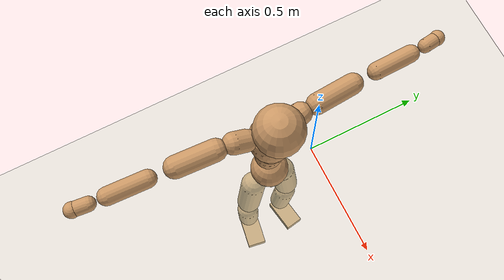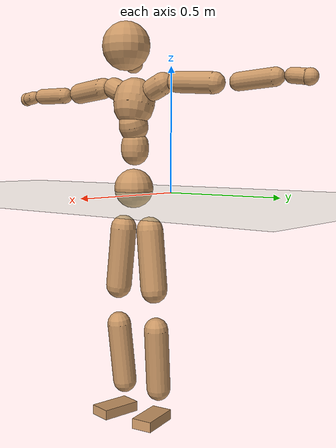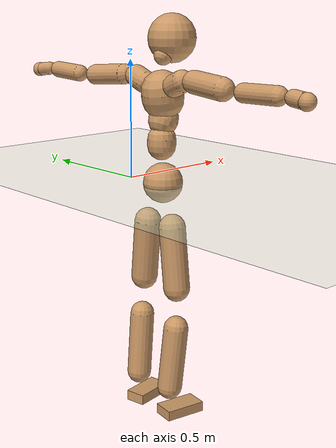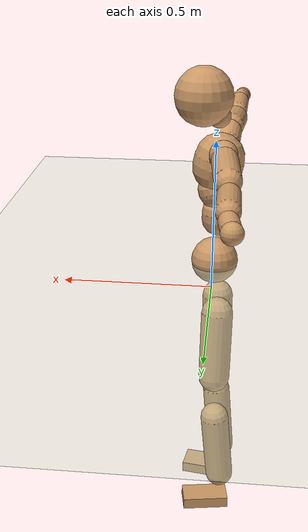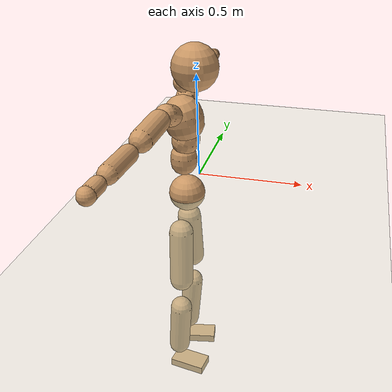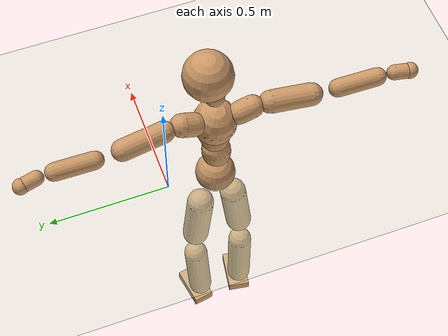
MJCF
<mujoco model="humanoid">
  <compiler coordinate="local" angle="radian"/>
  <default>
    <joint damping="0.0" armature="0.01" stiffness="0.0" limited="true"/>
    <geom conaffinity="1" condim="3" contype="7" margin="0.001" rgba="0.8 0.6 .4 1"/>
  </default>
  <asset>
    <texture type="skybox" builtin="gradient" rgb1=".4 .5 .6" rgb2="0 0 0" width="100" height="100"/>
    <texture builtin="flat" height="1278" mark="cross" markrgb="1 1 1" name="texgeom" random="0.01" rgb1="0.8 0.6 0.4" rgb2="0.8 0.6 0.4" type="cube" width="127"/>
    <texture builtin="checker" height="100" name="texplane" rgb1="0 0 0" rgb2="0.8 0.8 0.8" type="2d" width="100"/>
    <material name="MatPlane" reflectance="0.5" shininess="1" specular="1" texrepeat="60 60" texture="texplane"/>
    <material name="geom" texture="texgeom" texuniform="true"/>
  </asset>
  <worldbody>
    <light cutoff="100" diffuse="1 1 1" dir="-0 0 -1.3" directional="true" exponent="1" pos="0 0 1.3" specular=".1 .1 .1"/>
    <geom conaffinity="1" condim="3" name="floor" pos="0 0 0" rgba="0.8 0.9 0.8 1" size="100 100 .2" type="plane" material="MatPlane"/>
    <body name="Pelvis" pos="-0.0004 -0.2023 0.0105">
      <freejoint name="Pelvis"/>
      <geom type="sphere" contype="1" conaffinity="1" density="500" size="0.0826" pos="0.0000 0.0000 0.0000" name="Pelvis"/>
      <body name="L_Hip" pos="-0.0192 0.0652 -0.0897">
        <joint name="L_Hip_x" type="hinge" pos="0 0 0" axis="1 0 0" stiffness="800" damping="80" armature="0.02" range="-180.0000 180.0000"/>
        <joint name="L_Hip_y" type="hinge" pos="0 0 0" axis="0 1 0" stiffness="800" damping="80" armature="0.02" range="-180.0000 180.0000"/>
        <joint name="L_Hip_z" type="hinge" pos="0 0 0" axis="0 0 1" stiffness="800" damping="80" armature="0.02" range="-180.0000 180.0000"/>
        <geom type="capsule" contype="1" conaffinity="1" density="500" fromto="0.0009 0.0086 -0.0841 0.0036 0.0346 -0.3365" size="0.0563" name="L_Hip"/>
        <body name="L_Knee" pos="0.0045 0.0432 -0.4207">
          <joint name="L_Knee_x" type="hinge" pos="0 0 0" axis="1 0 0" stiffness="800" damping="80" armature="0.02" range="-180.0000 180.0000"/>
          <joint name="L_Knee_y" type="hinge" pos="0 0 0" axis="0 1 0" stiffness="800" damping="80" armature="0.02" range="-180.0000 180.0000"/>
          <joint name="L_Knee_z" type="hinge" pos="0 0 0" axis="0 0 1" stiffness="800" damping="80" armature="0.02" range="-180.0000 180.0000"/>
          <geom type="capsule" contype="1" conaffinity="1" density="500" fromto="-0.0086 -0.0027 -0.0885 -0.0345 -0.0109 -0.3542" size="0.0515" name="L_Knee"/>
          <body name="L_Ankle" pos="-0.0431 -0.0136 -0.4427">
            <joint name="L_Ankle_x" type="hinge" pos="0 0 0" axis="1 0 0" stiffness="800" damping="80" armature="0.02" range="-180.0000 180.0000"/>
            <joint name="L_Ankle_y" type="hinge" pos="0 0 0" axis="0 1 0" stiffness="800" damping="80" armature="0.02" range="-180.0000 180.0000"/>
            <joint name="L_Ankle_z" type="hinge" pos="0 0 0" axis="0 0 1" stiffness="800" damping="80" armature="0.02" range="-180.0000 180.0000"/>
            <geom type="box" contype="1" conaffinity="1" density="500" pos="0.0617 0.0104 -0.0306" size="0.0857 0.0441 0.0218" quat="0.9965 0.0000 0.0000 0.0836" name="L_Ankle"/>
            <body name="L_Toe" pos="0.1235 0.0209 -0.0612">
              <joint name="L_Toe_x" type="hinge" pos="0 0 0" axis="1 0 0" stiffness="500" damping="50" armature="0.02" range="-180.0000 180.0000"/>
              <joint name="L_Toe_y" type="hinge" pos="0 0 0" axis="0 1 0" stiffness="500" damping="50" armature="0.02" range="-180.0000 180.0000"/>
              <joint name="L_Toe_z" type="hinge" pos="0 0 0" axis="0 0 1" stiffness="500" damping="50" armature="0.02" range="-180.0000 180.0000"/>
              <geom type="box" contype="1" conaffinity="1" density="500" pos="0.0000 0.0000 0.0311" size="0.0009 0.0022 0.0011" quat="0.9959 0.0000 0.0000 0.0900" name="L_Toe"/>
            </body>
          </body>
        </body>
      </body>
      <body name="R_Hip" pos="-0.0143 -0.0625 -0.0874">
        <joint name="R_Hip_x" type="hinge" pos="0 0 0" axis="1 0 0" stiffness="800" damping="80" armature="0.02" range="-180.0000 180.0000"/>
        <joint name="R_Hip_y" type="hinge" pos="0 0 0" axis="0 1 0" stiffness="800" damping="80" armature="0.02" range="-180.0000 180.0000"/>
        <joint name="R_Hip_z" type="hinge" pos="0 0 0" axis="0 0 1" stiffness="800" damping="80" armature="0.02" range="-180.0000 180.0000"/>
        <geom type="capsule" contype="1" conaffinity="1" density="500" fromto="0.0001 -0.0098 -0.0859 0.0005 -0.0393 -0.3436" size="0.0554" name="R_Hip"/>
        <body name="R_Knee" pos="0.0007 -0.0491 -0.4295">
          <joint name="R_Knee_x" type="hinge" pos="0 0 0" axis="1 0 0" stiffness="800" damping="80" armature="0.02" range="-180.0000 180.0000"/>
          <joint name="R_Knee_y" type="hinge" pos="0 0 0" axis="0 1 0" stiffness="800" damping="80" armature="0.02" range="-180.0000 180.0000"/>
          <joint name="R_Knee_z" type="hinge" pos="0 0 0" axis="0 0 1" stiffness="800" damping="80" armature="0.02" range="-180.0000 180.0000"/>
          <geom type="capsule" contype="1" conaffinity="1" density="500" fromto="-0.0080 0.0036 -0.0885 -0.0322 0.0145 -0.3539" size="0.0519" name="R_Knee"/>
          <body name="R_Ankle" pos="-0.0402 0.0181 -0.4424">
            <joint name="R_Ankle_x" type="hinge" pos="0 0 0" axis="1 0 0" stiffness="800" damping="80" armature="0.02" range="-180.0000 180.0000"/>
            <joint name="R_Ankle_y" type="hinge" pos="0 0 0" axis="0 1 0" stiffness="800" damping="80" armature="0.02" range="-180.0000 180.0000"/>
            <joint name="R_Ankle_z" type="hinge" pos="0 0 0" axis="0 0 1" stiffness="800" damping="80" armature="0.02" range="-180.0000 180.0000"/>
            <geom type="box" contype="1" conaffinity="1" density="500" pos="0.0635 -0.0101 -0.0257" size="0.088 0.0472 0.0211" quat="0.9969 0.0000 0.0000 -0.0787" name="R_Ankle"/>
            <body name="R_Toe" pos="0.1269 -0.0202 -0.0514">
              <joint name="R_Toe_x" type="hinge" pos="0 0 0" axis="1 0 0" stiffness="500" damping="50" armature="0.02" range="-180.0000 180.0000"/>
              <joint name="R_Toe_y" type="hinge" pos="0 0 0" axis="0 1 0" stiffness="500" damping="50" armature="0.02" range="-180.0000 180.0000"/>
              <joint name="R_Toe_z" type="hinge" pos="0 0 0" axis="0 0 1" stiffness="500" damping="50" armature="0.02" range="-180.0000 180.0000"/>
              <geom type="box" contype="1" conaffinity="1" density="500" pos="0.0000 0.0000 0.0286" size="0.0008 0.0023 0.0012" quat="0.9976 0.0000 0.0000 -0.0699" name="R_Toe"/>
            </body>
          </body>
        </body>
      </body>
      <body name="Torso" pos="-0.0102 -0.0032 0.1014">
        <joint name="Torso_x" type="hinge" pos="0 0 0" axis="1 0 0" stiffness="1000" damping="100" armature="0.02" range="-180.0000 180.0000"/>
        <joint name="Torso_y" type="hinge" pos="0 0 0" axis="0 1 0" stiffness="1000" damping="100" armature="0.02" range="-180.0000 180.0000"/>
        <joint name="Torso_z" type="hinge" pos="0 0 0" axis="0 0 1" stiffness="1000" damping="100" armature="0.02" range="-180.0000 180.0000"/>
        <geom type="capsule" contype="1" conaffinity="1" density="500" fromto="0.0016 0.0026 0.0810 0.0011 0.0017 0.0540" size="0.0585" name="Torso"/>
        <body name="Spine" pos="0.0027 0.0044 0.135">
          <joint name="Spine_x" type="hinge" pos="0 0 0" axis="1 0 0" stiffness="1000" damping="100" armature="0.02" range="-180.0000 180.0000"/>
          <joint name="Spine_y" type="hinge" pos="0 0 0" axis="0 1 0" stiffness="1000" damping="100" armature="0.02" range="-180.0000 180.0000"/>
          <joint name="Spine_z" type="hinge" pos="0 0 0" axis="0 0 1" stiffness="1000" damping="100" armature="0.02" range="-180.0000 180.0000"/>
          <geom type="capsule" contype="1" conaffinity="1" density="500" fromto="0.0127 0.0008 0.0306 0.0084 0.0005 0.0204" size="0.0611" name="Spine"/>
          <body name="Chest" pos="0.0211 0.0014 0.0511">
            <joint name="Chest_x" type="hinge" pos="0 0 0" axis="1 0 0" stiffness="1000" damping="100" armature="0.02" range="-180.0000 180.0000"/>
            <joint name="Chest_y" type="hinge" pos="0 0 0" axis="0 1 0" stiffness="1000" damping="100" armature="0.02" range="-180.0000 180.0000"/>
            <joint name="Chest_z" type="hinge" pos="0 0 0" axis="0 0 1" stiffness="1000" damping="100" armature="0.02" range="-180.0000 180.0000"/>
            <geom type="capsule" contype="1" conaffinity="1" density="500" fromto="-0.0191 -0.0014 0.0869 -0.0128 -0.0009 0.0580" size="0.0861" name="Chest"/>
            <body name="Neck" pos="-0.0265 -0.0042 0.2126">
              <joint name="Neck_x" type="hinge" pos="0 0 0" axis="1 0 0" stiffness="500" damping="50" armature="0.02" range="-180.0000 180.0000"/>
              <joint name="Neck_y" type="hinge" pos="0 0 0" axis="0 1 0" stiffness="500" damping="50" armature="0.02" range="-180.0000 180.0000"/>
              <joint name="Neck_z" type="hinge" pos="0 0 0" axis="0 0 1" stiffness="500" damping="50" armature="0.02" range="-180.0000 180.0000"/>
              <geom type="capsule" contype="1" conaffinity="1" density="500" fromto="0.0130 0.0017 0.0163 0.0521 0.0068 0.0653" size="0.0392" name="Neck"/>
              <body name="Head" pos="0.0652 0.0085 0.0817">
                <joint name="Head_x" type="hinge" pos="0 0 0" axis="1 0 0" stiffness="500" damping="50" armature="0.02" range="-180.0000 180.0000"/>
                <joint name="Head_y" type="hinge" pos="0 0 0" axis="0 1 0" stiffness="500" damping="50" armature="0.02" range="-180.0000 180.0000"/>
                <joint name="Head_z" type="hinge" pos="0 0 0" axis="0 0 1" stiffness="500" damping="50" armature="0.02" range="-180.0000 180.0000"/>
                <geom type="sphere" contype="1" conaffinity="1" density="500" size="0.0987" pos="0.0000 0.0000 0.0000" name="Head"/>
              </body>
            </body>
            <body name="L_Thorax" pos="-0.0319 0.071 0.1124">
              <joint name="L_Thorax_x" type="hinge" pos="0 0 0" axis="1 0 0" stiffness="500" damping="50" armature="0.02" range="-180.0000 180.0000"/>
              <joint name="L_Thorax_y" type="hinge" pos="0 0 0" axis="0 1 0" stiffness="500" damping="50" armature="0.02" range="-180.0000 180.0000"/>
              <joint name="L_Thorax_z" type="hinge" pos="0 0 0" axis="0 0 1" stiffness="500" damping="50" armature="0.02" range="-180.0000 180.0000"/>
              <geom type="capsule" contype="1" conaffinity="1" density="500" fromto="-0.0008 0.0164 0.0070 -0.0031 0.0655 0.0279" size="0.0464" name="L_Thorax"/>
              <body name="L_Shoulder" pos="-0.0039 0.0818 0.0348">
                <joint name="L_Shoulder_x" type="hinge" pos="0 0 0" axis="1 0 0" stiffness="500" damping="50" armature="0.02" range="-720.0000 720.0000"/>
                <joint name="L_Shoulder_y" type="hinge" pos="0 0 0" axis="0 1 0" stiffness="500" damping="50" armature="0.02" range="-720.0000 720.0000"/>
                <joint name="L_Shoulder_z" type="hinge" pos="0 0 0" axis="0 0 1" stiffness="500" damping="50" armature="0.02" range="-720.0000 720.0000"/>
                <geom type="capsule" contype="1" conaffinity="1" density="500" fromto="-0.0053 0.0558 -0.0043 -0.0211 0.2231 -0.0173" size="0.0429" name="L_Shoulder"/>
                <body name="L_Elbow" pos="-0.0264 0.2788 -0.0216">
                  <joint name="L_Elbow_x" type="hinge" pos="0 0 0" axis="1 0 0" stiffness="500" damping="50" armature="0.02" range="-720.0000 720.0000"/>
                  <joint name="L_Elbow_y" type="hinge" pos="0 0 0" axis="0 1 0" stiffness="500" damping="50" armature="0.02" range="-720.0000 720.0000"/>
                  <joint name="L_Elbow_z" type="hinge" pos="0 0 0" axis="0 0 1" stiffness="500" damping="50" armature="0.02" range="-720.0000 720.0000"/>
                  <geom type="capsule" contype="1" conaffinity="1" density="500" fromto="-0.0006 0.0517 0.0023 -0.0024 0.2068 0.0092" size="0.0354" name="L_Elbow"/>
                  <body name="L_Wrist" pos="-0.003 0.2585 0.0115">
                    <joint name="L_Wrist_x" type="hinge" pos="0 0 0" axis="1 0 0" stiffness="300" damping="30" armature="0.02" range="-180.0000 180.0000"/>
                    <joint name="L_Wrist_y" type="hinge" pos="0 0 0" axis="0 1 0" stiffness="300" damping="30" armature="0.02" range="-180.0000 180.0000"/>
                    <joint name="L_Wrist_z" type="hinge" pos="0 0 0" axis="0 0 1" stiffness="300" damping="30" armature="0.02" range="-180.0000 180.0000"/>
                    <geom type="capsule" contype="1" conaffinity="1" density="500" fromto="-0.0027 0.0156 -0.0020 -0.0106 0.0623 -0.0079" size="0.0288" name="L_Wrist"/>
                    <body name="L_Hand" pos="-0.0133 0.0779 -0.0098">
                      <joint name="L_Hand_x" type="hinge" pos="0 0 0" axis="1 0 0" stiffness="300" damping="30" armature="0.02" range="-180.0000 180.0000"/>
                      <joint name="L_Hand_y" type="hinge" pos="0 0 0" axis="0 1 0" stiffness="300" damping="30" armature="0.02" range="-180.0000 180.0000"/>
                      <joint name="L_Hand_z" type="hinge" pos="0 0 0" axis="0 0 1" stiffness="300" damping="30" armature="0.02" range="-180.0000 180.0000"/>
                      <geom type="sphere" contype="1" conaffinity="1" density="500" size="0.0312" pos="0.0000 0.0000 0.0000" name="L_Hand"/>
                    </body>
                  </body>
                </body>
              </body>
            </body>
            <body name="R_Thorax" pos="-0.0373 -0.0738 0.1097">
              <joint name="R_Thorax_x" type="hinge" pos="0 0 0" axis="1 0 0" stiffness="500" damping="50" armature="0.02" range="-180.0000 180.0000"/>
              <joint name="R_Thorax_y" type="hinge" pos="0 0 0" axis="0 1 0" stiffness="500" damping="50" armature="0.02" range="-180.0000 180.0000"/>
              <joint name="R_Thorax_z" type="hinge" pos="0 0 0" axis="0 0 1" stiffness="500" damping="50" armature="0.02" range="-180.0000 180.0000"/>
              <geom type="capsule" contype="1" conaffinity="1" density="500" fromto="-0.0015 -0.0171 0.0075 -0.0059 -0.0683 0.0300" size="0.0452" name="R_Thorax"/>
              <body name="R_Shoulder" pos="-0.0074 -0.0853 0.0375">
                <joint name="R_Shoulder_x" type="hinge" pos="0 0 0" axis="1 0 0" stiffness="500" damping="50" armature="0.02" range="-720.0000 720.0000"/>
                <joint name="R_Shoulder_y" type="hinge" pos="0 0 0" axis="0 1 0" stiffness="500" damping="50" armature="0.02" range="-720.0000 720.0000"/>
                <joint name="R_Shoulder_z" type="hinge" pos="0 0 0" axis="0 0 1" stiffness="500" damping="50" armature="0.02" range="-720.0000 720.0000"/>
                <geom type="capsule" contype="1" conaffinity="1" density="500" fromto="-0.0041 -0.0541 -0.0042 -0.0164 -0.2165 -0.0168" size="0.0453" name="R_Shoulder"/>
                <body name="R_Elbow" pos="-0.0206 -0.2706 -0.021">
                  <joint name="R_Elbow_x" type="hinge" pos="0 0 0" axis="1 0 0" stiffness="500" damping="50" armature="0.02" range="-720.0000 720.0000"/>
                  <joint name="R_Elbow_y" type="hinge" pos="0 0 0" axis="0 1 0" stiffness="500" damping="50" armature="0.02" range="-720.0000 720.0000"/>
                  <joint name="R_Elbow_z" type="hinge" pos="0 0 0" axis="0 0 1" stiffness="500" damping="50" armature="0.02" range="-720.0000 720.0000"/>
                  <geom type="capsule" contype="1" conaffinity="1" density="500" fromto="-0.0018 -0.0539 0.0013 -0.0071 -0.2155 0.0053" size="0.0362" name="R_Elbow"/>
                  <body name="R_Wrist" pos="-0.0089 -0.2694 0.0066">
                    <joint name="R_Wrist_x" type="hinge" pos="0 0 0" axis="1 0 0" stiffness="300" damping="30" armature="0.02" range="-180.0000 180.0000"/>
                    <joint name="R_Wrist_y" type="hinge" pos="0 0 0" axis="0 1 0" stiffness="300" damping="30" armature="0.02" range="-180.0000 180.0000"/>
                    <joint name="R_Wrist_z" type="hinge" pos="0 0 0" axis="0 0 1" stiffness="300" damping="30" armature="0.02" range="-180.0000 180.0000"/>
                    <geom type="capsule" contype="1" conaffinity="1" density="500" fromto="-0.0020 -0.0160 -0.0015 -0.0081 -0.0640 -0.0059" size="0.03" name="R_Wrist"/>
                    <body name="R_Hand" pos="-0.0102 -0.08 -0.0074">
                      <joint name="R_Hand_x" type="hinge" pos="0 0 0" axis="1 0 0" stiffness="300" damping="30" armature="0.02" range="-180.0000 180.0000"/>
                      <joint name="R_Hand_y" type="hinge" pos="0 0 0" axis="0 1 0" stiffness="300" damping="30" armature="0.02" range="-180.0000 180.0000"/>
                      <joint name="R_Hand_z" type="hinge" pos="0 0 0" axis="0 0 1" stiffness="300" damping="30" armature="0.02" range="-180.0000 180.0000"/>
                      <geom type="sphere" contype="1" conaffinity="1" density="500" size="0.0319" pos="0.0000 0.0000 0.0000" name="R_Hand"/>
                    </body>
                  </body>
                </body>
              </body>
            </body>
          </body>
        </body>
      </body>
    </body>
  </worldbody>
  <actuator>
    <motor name="L_Hip_x" joint="L_Hip_x" gear="500"/>
    <motor name="L_Hip_y" joint="L_Hip_y" gear="500"/>
    <motor name="L_Hip_z" joint="L_Hip_z" gear="500"/>
    <motor name="L_Knee_x" joint="L_Knee_x" gear="500"/>
    <motor name="L_Knee_y" joint="L_Knee_y" gear="500"/>
    <motor name="L_Knee_z" joint="L_Knee_z" gear="500"/>
    <motor name="L_Ankle_x" joint="L_Ankle_x" gear="500"/>
    <motor name="L_Ankle_y" joint="L_Ankle_y" gear="500"/>
    <motor name="L_Ankle_z" joint="L_Ankle_z" gear="500"/>
    <motor name="L_Toe_x" joint="L_Toe_x" gear="500"/>
    <motor name="L_Toe_y" joint="L_Toe_y" gear="500"/>
    <motor name="L_Toe_z" joint="L_Toe_z" gear="500"/>
    <motor name="R_Hip_x" joint="R_Hip_x" gear="500"/>
    <motor name="R_Hip_y" joint="R_Hip_y" gear="500"/>
    <motor name="R_Hip_z" joint="R_Hip_z" gear="500"/>
    <motor name="R_Knee_x" joint="R_Knee_x" gear="500"/>
    <motor name="R_Knee_y" joint="R_Knee_y" gear="500"/>
    <motor name="R_Knee_z" joint="R_Knee_z" gear="500"/>
    <motor name="R_Ankle_x" joint="R_Ankle_x" gear="500"/>
    <motor name="R_Ankle_y" joint="R_Ankle_y" gear="500"/>
    <motor name="R_Ankle_z" joint="R_Ankle_z" gear="500"/>
    <motor name="R_Toe_x" joint="R_Toe_x" gear="500"/>
    <motor name="R_Toe_y" joint="R_Toe_y" gear="500"/>
    <motor name="R_Toe_z" joint="R_Toe_z" gear="500"/>
    <motor name="Torso_x" joint="Torso_x" gear="500"/>
    <motor name="Torso_y" joint="Torso_y" gear="500"/>
    <motor name="Torso_z" joint="Torso_z" gear="500"/>
    <motor name="Spine_x" joint="Spine_x" gear="500"/>
    <motor name="Spine_y" joint="Spine_y" gear="500"/>
    <motor name="Spine_z" joint="Spine_z" gear="500"/>
    <motor name="Chest_x" joint="Chest_x" gear="500"/>
    <motor name="Chest_y" joint="Chest_y" gear="500"/>
    <motor name="Chest_z" joint="Chest_z" gear="500"/>
    <motor name="Neck_x" joint="Neck_x" gear="500"/>
    <motor name="Neck_y" joint="Neck_y" gear="500"/>
    <motor name="Neck_z" joint="Neck_z" gear="500"/>
    <motor name="Head_x" joint="Head_x" gear="500"/>
    <motor name="Head_y" joint="Head_y" gear="500"/>
    <motor name="Head_z" joint="Head_z" gear="500"/>
    <motor name="L_Thorax_x" joint="L_Thorax_x" gear="500"/>
    <motor name="L_Thorax_y" joint="L_Thorax_y" gear="500"/>
    <motor name="L_Thorax_z" joint="L_Thorax_z" gear="500"/>
    <motor name="L_Shoulder_x" joint="L_Shoulder_x" gear="500"/>
    <motor name="L_Shoulder_y" joint="L_Shoulder_y" gear="500"/>
    <motor name="L_Shoulder_z" joint="L_Shoulder_z" gear="500"/>
    <motor name="L_Elbow_x" joint="L_Elbow_x" gear="500"/>
    <motor name="L_Elbow_y" joint="L_Elbow_y" gear="500"/>
    <motor name="L_Elbow_z" joint="L_Elbow_z" gear="500"/>
    <motor name="L_Wrist_x" joint="L_Wrist_x" gear="500"/>
    <motor name="L_Wrist_y" joint="L_Wrist_y" gear="500"/>
    <motor name="L_Wrist_z" joint="L_Wrist_z" gear="500"/>
    <motor name="L_Hand_x" joint="L_Hand_x" gear="500"/>
    <motor name="L_Hand_y" joint="L_Hand_y" gear="500"/>
    <motor name="L_Hand_z" joint="L_Hand_z" gear="500"/>
    <motor name="R_Thorax_x" joint="R_Thorax_x" gear="500"/>
    <motor name="R_Thorax_y" joint="R_Thorax_y" gear="500"/>
    <motor name="R_Thorax_z" joint="R_Thorax_z" gear="500"/>
    <motor name="R_Shoulder_x" joint="R_Shoulder_x" gear="500"/>
    <motor name="R_Shoulder_y" joint="R_Shoulder_y" gear="500"/>
    <motor name="R_Shoulder_z" joint="R_Shoulder_z" gear="500"/>
    <motor name="R_Elbow_x" joint="R_Elbow_x" gear="500"/>
    <motor name="R_Elbow_y" joint="R_Elbow_y" gear="500"/>
    <motor name="R_Elbow_z" joint="R_Elbow_z" gear="500"/>
    <motor name="R_Wrist_x" joint="R_Wrist_x" gear="500"/>
    <motor name="R_Wrist_y" joint="R_Wrist_y" gear="500"/>
    <motor name="R_Wrist_z" joint="R_Wrist_z" gear="500"/>
    <motor name="R_Hand_x" joint="R_Hand_x" gear="500"/>
    <motor name="R_Hand_y" joint="R_Hand_y" gear="500"/>
    <motor name="R_Hand_z" joint="R_Hand_z" gear="500"/>
  </actuator>
  <contact>
    <exclude body1="Torso" body2="Chest"/>
    <exclude body1="Head" body2="Chest"/>
    <exclude body1="R_Knee" body2="R_Toe"/>
    <exclude body1="R_Knee" body2="L_Ankle"/>
    <exclude body1="R_Knee" body2="L_Toe"/>
    <exclude body1="L_Knee" body2="L_Toe"/>
    <exclude body1="L_Knee" body2="R_Ankle"/>
    <exclude body1="L_Knee" body2="R_Toe"/>
    <exclude body1="L_Shoulder" body2="Chest"/>
    <exclude body1="R_Shoulder" body2="Chest"/>
  </contact>
  <sensor/>
  <size njmax="700" nconmax="700"/>
</mujoco>
